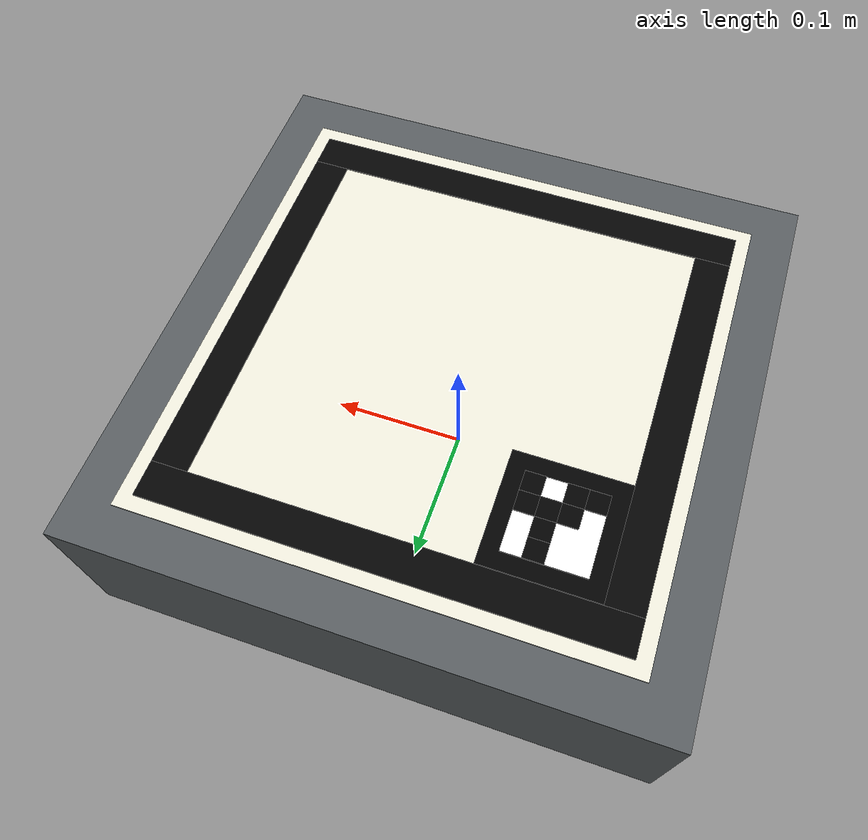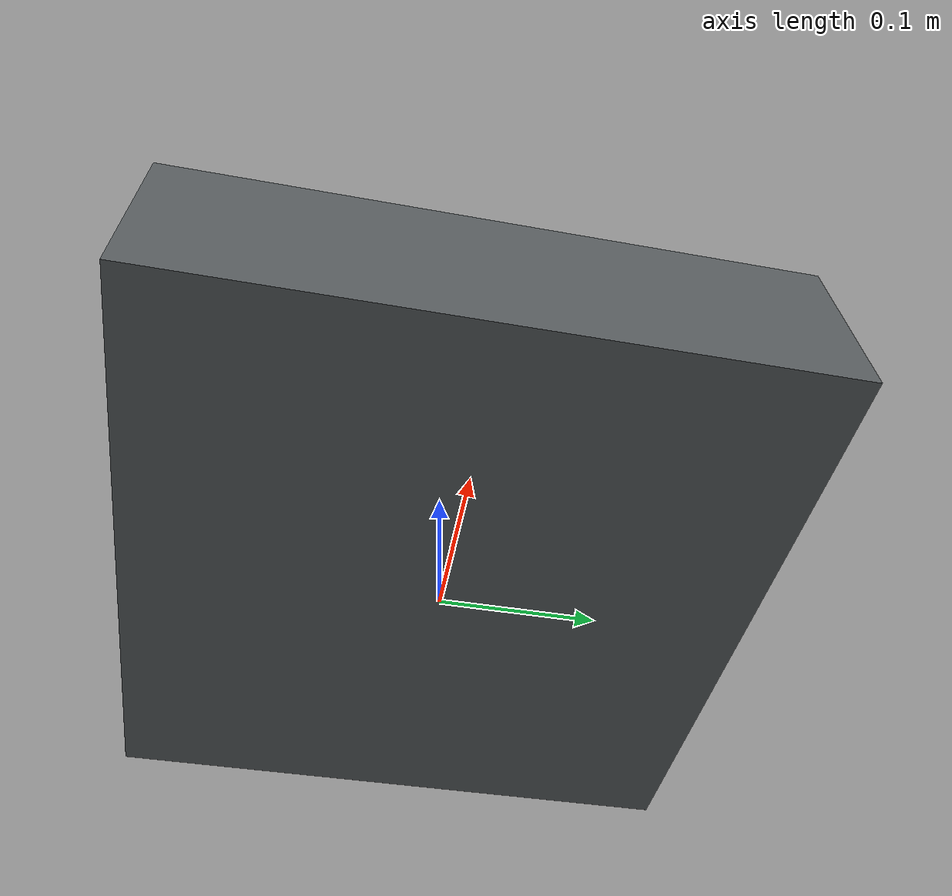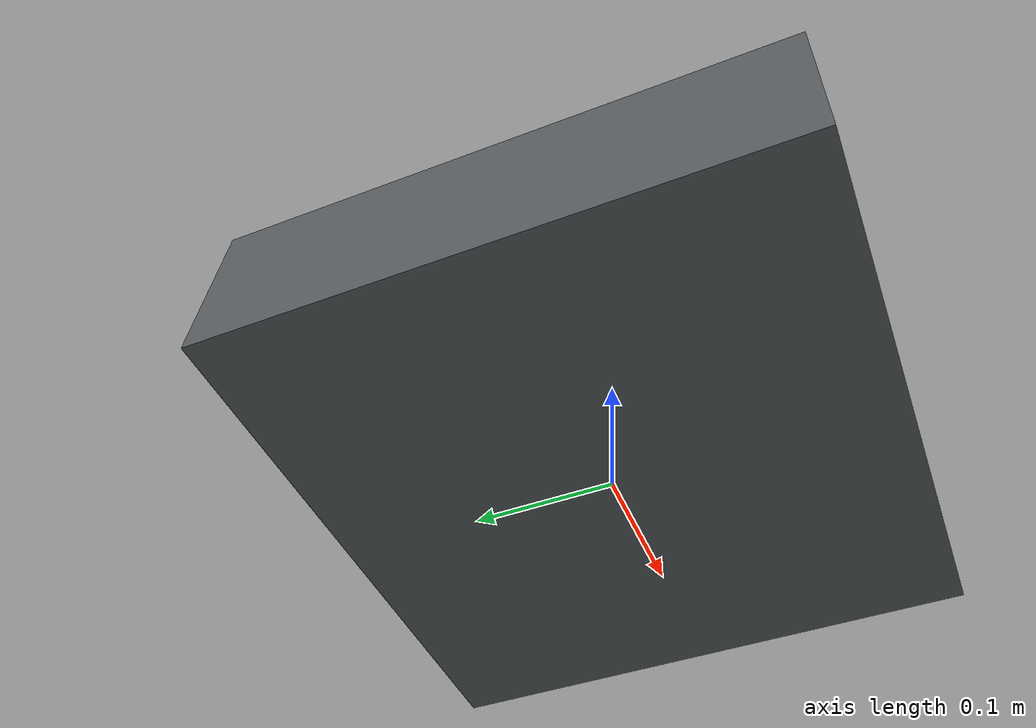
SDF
<?xml version="1.0"?>
<sdf version="1.8">
  <model name="aruco_drop_zone">
    <static>true</static>
    <link name="target">
      <collision name="low_plinth_collision">
        <pose>0 0 0.06 0 0 0</pose>
        <geometry><box><size>0.40 0.40 0.12</size></box></geometry>
      </collision>
      <visual name="low_plinth">
        <pose>0 0 0.06 0 0 0</pose>
        <geometry><box><size>0.40 0.40 0.12</size></box></geometry>
        <material><ambient>0.26 0.28 0.29 1</ambient><diffuse>0.33 0.35 0.36 1</diffuse></material>
      </visual>
      <visual name="mat">
        <pose>0 0 0.1205 0 0 0</pose>
        <geometry><box><size>0.34 0.34 0.001</size></box></geometry>
        <material><ambient>0.82 0.81 0.76 1</ambient><diffuse>0.90 0.89 0.83 1</diffuse></material>
      </visual>
      <!-- Four 25 mm strips resemble matte black floor tape. They are visual
           only so MoveIt receives one clean target polygon, not four obstacles. -->
      <visual name="tape_n"><pose>0 0.1475 0.1212 0 0 0</pose><geometry><box><size>0.32 0.025 0.001</size></box></geometry><material><ambient>0.006 0.006 0.006 1</ambient><diffuse>0.012 0.012 0.012 1</diffuse></material></visual>
      <visual name="tape_s"><pose>0 -0.1475 0.1212 0 0 0</pose><geometry><box><size>0.32 0.025 0.001</size></box></geometry><material><ambient>0.006 0.006 0.006 1</ambient><diffuse>0.012 0.012 0.012 1</diffuse></material></visual>
      <visual name="tape_e"><pose>0.1475 0 0.1212 0 0 0</pose><geometry><box><size>0.025 0.27 0.001</size></box></geometry><material><ambient>0.006 0.006 0.006 1</ambient><diffuse>0.012 0.012 0.012 1</diffuse></material></visual>
      <visual name="tape_w"><pose>-0.1475 0 0.1212 0 0 0</pose><geometry><box><size>0.025 0.27 0.001</size></box></geometry><material><ambient>0.006 0.006 0.006 1</ambient><diffuse>0.012 0.012 0.012 1</diffuse></material></visual>
      <!-- ArUco DICT_4X4_50 marker id 23, represented as geometry so it stays
           crisp without an external texture and remains visible after placement. -->
      <visual name="marker_black"><pose>-0.095 0.095 0.1220 0 0 0</pose><geometry><box><size>0.080 0.080 0.001</size></box></geometry><material><ambient>0 0 0 1</ambient><diffuse>0 0 0 1</diffuse></material></visual>
      <visual name="marker_white"><pose>-0.095 0.095 0.1226 0 0 0</pose><geometry><box><size>0.056 0.056 0.001</size></box></geometry><material><ambient>1 1 1 1</ambient><diffuse>1 1 1 1</diffuse></material></visual>
      <visual name="marker_r1c3"><pose>-0.088 0.116 0.1232 0 0 0</pose><geometry><box><size>0.014 0.014 0.001</size></box></geometry><material><ambient>0 0 0 1</ambient><diffuse>0 0 0 1</diffuse></material></visual>
      <visual name="marker_r2c3"><pose>-0.088 0.102 0.1232 0 0 0</pose><geometry><box><size>0.014 0.014 0.001</size></box></geometry><material><ambient>0 0 0 1</ambient><diffuse>0 0 0 1</diffuse></material></visual>
      <visual name="marker_r3c2"><pose>-0.102 0.088 0.1232 0 0 0</pose><geometry><box><size>0.014 0.014 0.001</size></box></geometry><material><ambient>0 0 0 1</ambient><diffuse>0 0 0 1</diffuse></material></visual>
      <visual name="marker_r3c3"><pose>-0.088 0.088 0.1232 0 0 0</pose><geometry><box><size>0.014 0.014 0.001</size></box></geometry><material><ambient>0 0 0 1</ambient><diffuse>0 0 0 1</diffuse></material></visual>
      <visual name="marker_r3c4"><pose>-0.074 0.088 0.1232 0 0 0</pose><geometry><box><size>0.014 0.014 0.001</size></box></geometry><material><ambient>0 0 0 1</ambient><diffuse>0 0 0 1</diffuse></material></visual>
      <visual name="marker_r4c1"><pose>-0.116 0.074 0.1232 0 0 0</pose><geometry><box><size>0.014 0.014 0.001</size></box></geometry><material><ambient>0 0 0 1</ambient><diffuse>0 0 0 1</diffuse></material></visual>
      <visual name="marker_r4c2"><pose>-0.102 0.074 0.1232 0 0 0</pose><geometry><box><size>0.014 0.014 0.001</size></box></geometry><material><ambient>0 0 0 1</ambient><diffuse>0 0 0 1</diffuse></material></visual>
      <visual name="marker_r4c4"><pose>-0.074 0.074 0.1232 0 0 0</pose><geometry><box><size>0.014 0.014 0.001</size></box></geometry><material><ambient>0 0 0 1</ambient><diffuse>0 0 0 1</diffuse></material></visual>
    </link>
  </model>
</sdf>
